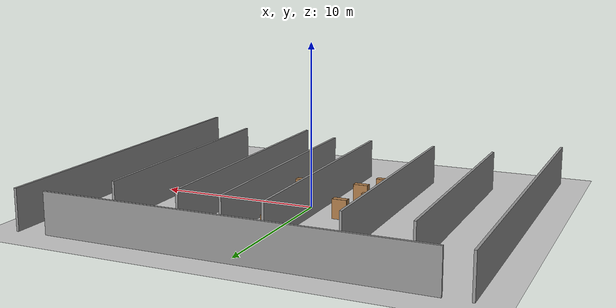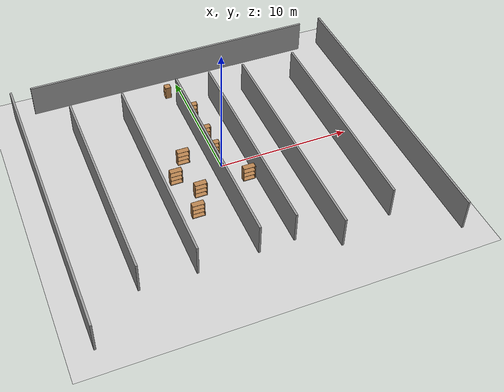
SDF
<sdf version="1.6">
 <world name="default">
  <model name="ground_plane">
   <static>1</static>
   <link name="link">
    <collision name="collision">
     <geometry><plane><normal>0 0 1</normal><size>100 100</size></plane></geometry>
     <surface><friction><ode><mu>100</mu><mu2>50</mu2></ode></friction></surface>
    </collision>
    <visual name="visual">
     <cast_shadows>0</cast_shadows>
     <geometry><plane><normal>0 0 1</normal><size>100 100</size></plane></geometry>
     <material>
      <script><uri>file://media/materials/scripts/gazebo.material</uri><name>Gazebo/Grey</name></script>
     </material>
    </visual>
   </link>
  </model>
  <model name="room14">
   <pose>0.127476 -0.35798 0 0 -0 0</pose>
   <link name="Wall_0">
    <collision name="Wall_0_Collision">
     <geometry><box><size>22.5 0.15 2.5</size></box></geometry>
     <pose>0 0 1.25 0 -0 0</pose>
    </collision>
    <visual name="Wall_0_Visual">
     <pose>0 0 1.25 0 -0 0</pose>
     <geometry><box><size>22.5 0.15 2.5</size></box></geometry>
     <material>
      <script><uri>file://media/materials/scripts/gazebo.material</uri><name>Gazebo/Grey</name></script>
      <ambient>1 1 1 1</ambient>
     </material>
     <meta><layer>0</layer></meta>
    </visual>
    <pose>-0.170741 11.1292 0 0 -0 0</pose>
   </link>
   <link name="Wall_10">
    <collision name="Wall_10_Collision">
     <geometry><box><size>16.25 0.15 2.5</size></box></geometry>
     <pose>0 0 1.25 0 -0 0</pose>
    </collision>
    <visual name="Wall_10_Visual">
     <pose>0 0 1.25 0 -0 0</pose>
     <geometry><box><size>16.25 0.15 2.5</size></box></geometry>
     <material>
      <script><uri>file://media/materials/scripts/gazebo.material</uri><name>Gazebo/Grey</name></script>
      <ambient>1 1 1 1</ambient>
     </material>
     <meta><layer>0</layer></meta>
    </visual>
    <pose>-0.774876 0.037064 0 0 -0 -1.5708</pose>
   </link>
   <link name="Wall_12">
    <collision name="Wall_12_Collision">
     <geometry><box><size>16 0.15 2.5</size></box></geometry>
     <pose>0 0 1.25 0 -0 0</pose>
    </collision>
    <visual name="Wall_12_Visual">
     <pose>0 0 1.25 0 -0 0</pose>
     <geometry><box><size>16 0.15 2.5</size></box></geometry>
     <material>
      <script><uri>file://media/materials/scripts/gazebo.material</uri><name>Gazebo/Grey</name></script>
      <ambient>1 1 1 1</ambient>
     </material>
     <meta><layer>0</layer></meta>
    </visual>
    <pose>1.86201 0.02328 0 0 -0 -1.5708</pose>
   </link>
   <link name="Wall_14">
    <collision name="Wall_14_Collision">
     <geometry><box><size>17.5 0.15 2.5</size></box></geometry>
     <pose>0 0 1.25 0 -0 0</pose>
    </collision>
    <visual name="Wall_14_Visual">
     <pose>0 0 1.25 0 -0 0</pose>
     <geometry><box><size>17.5 0.15 2.5</size></box></geometry>
     <material>
      <script><uri>file://media/materials/scripts/gazebo.material</uri><name>Gazebo/Grey</name></script>
      <ambient>1 1 1 1</ambient>
     </material>
     <meta><layer>0</layer></meta>
    </visual>
    <pose>4.63769 -0.819242 0 0 -0 -1.5708</pose>
   </link>
   <link name="Wall_16">
    <collision name="Wall_16_Collision">
     <geometry><box><size>16.25 0.15 2.5</size></box></geometry>
     <pose>0 0 1.25 0 -0 0</pose>
    </collision>
    <visual name="Wall_16_Visual">
     <pose>0 0 1.25 0 -0 0</pose>
     <geometry><box><size>16.25 0.15 2.5</size></box></geometry>
     <material>
      <script><uri>file://media/materials/scripts/gazebo.material</uri><name>Gazebo/Grey</name></script>
      <ambient>1 1 1 1</ambient>
     </material>
     <meta><layer>0</layer></meta>
    </visual>
    <pose>8.87059 -0.240503 0 0 -0 -1.5708</pose>
   </link>
   <link name="Wall_2">
    <collision name="Wall_2_Collision">
     <geometry><box><size>22.5 0.15 2.5</size></box></geometry>
     <pose>0 0 1.25 0 -0 0</pose>
    </collision>
    <visual name="Wall_2_Visual">
     <pose>0 0 1.25 0 -0 0</pose>
     <geometry><box><size>22.5 0.15 2.5</size></box></geometry>
     <material>
      <script><uri>file://media/materials/scripts/gazebo.material</uri><name>Gazebo/Grey</name></script>
      <ambient>1 1 1 1</ambient>
     </material>
     <meta><layer>0</layer></meta>
    </visual>
    <pose>-12.9184 -0.057826 0 0 -0 -1.5708</pose>
   </link>
   <link name="Wall_4">
    <collision name="Wall_4_Collision">
     <geometry><box><size>22.5 0.15 2.5</size></box></geometry>
     <pose>0 0 1.25 0 -0 0</pose>
    </collision>
    <visual name="Wall_4_Visual">
     <pose>0 0 1.25 0 -0 0</pose>
     <geometry><box><size>22.5 0.15 2.5</size></box></geometry>
     <material>
      <script><uri>file://media/materials/scripts/gazebo.material</uri><name>Gazebo/Grey</name></script>
      <ambient>1 1 1 1</ambient>
     </material>
     <meta><layer>0</layer></meta>
    </visual>
    <pose>12.9184 0.057827 0 0 -0 -1.5708</pose>
   </link>
   <link name="Wall_6">
    <collision name="Wall_6_Collision">
     <geometry><box><size>16.25 0.15 2.5</size></box></geometry>
     <pose>0 0 1.25 0 -0 0</pose>
    </collision>
    <visual name="Wall_6_Visual">
     <pose>0 0 1.25 0 -0 0</pose>
     <geometry><box><size>16.25 0.15 2.5</size></box></geometry>
     <material>
      <script><uri>file://media/materials/scripts/gazebo.material</uri><name>Gazebo/Grey</name></script>
      <ambient>1 1 1 1</ambient>
     </material>
     <meta><layer>0</layer></meta>
    </visual>
    <pose>-9.12503 0.013933 0 0 -0 -1.5708</pose>
   </link>
   <link name="Wall_8">
    <collision name="Wall_8_Collision">
     <geometry><box><size>16.25 0.15 2.5</size></box></geometry>
     <pose>0 0 1.25 0 -0 0</pose>
    </collision>
    <visual name="Wall_8_Visual">
     <pose>0 0 1.25 0 -0 0</pose>
     <geometry><box><size>16.25 0.15 2.5</size></box></geometry>
     <material>
      <script><uri>file://media/materials/scripts/gazebo.material</uri><name>Gazebo/Grey</name></script>
      <ambient>1 1 1 1</ambient>
     </material>
     <meta><layer>0</layer></meta>
    </visual>
    <pose>-5.14656 -0.078589 0 0 -0 -1.5708</pose>
   </link>
   <static>1</static>
  </model>
  <model name="bookshelf_2">
   <static>1</static>
   <link name="link">
    <inertial><mass>1</mass></inertial>
    <collision name="back">
     <pose>0 0.005 0.6 0 -0 0</pose>
     <geometry><box><size>0.9 0.01 1.2</size></box></geometry>
    </collision>
    <visual name="visual1">
     <pose>0 0.005 0.6 0 -0 0</pose>
     <geometry><box><size>0.9 0.01 1.2</size></box></geometry>
     <material>
      <script><uri>file://media/materials/scripts/gazebo.material</uri><name>Gazebo/Wood</name></script>
     </material>
    </visual>
    <collision name="left_side">
     <pose>0.45 -0.195 0.6 0 -0 0</pose>
     <geometry><box><size>0.02 0.4 1.2</size></box></geometry>
    </collision>
    <visual name="visual2">
     <pose>0.45 -0.195 0.6 0 -0 0</pose>
     <geometry><box><size>0.02 0.4 1.2</size></box></geometry>
     <material>
      <script><uri>file://media/materials/scripts/gazebo.material</uri><name>Gazebo/Wood</name></script>
     </material>
    </visual>
    <collision name="right_side">
     <pose>-0.45 -0.195 0.6 0 -0 0</pose>
     <geometry><box><size>0.02 0.4 1.2</size></box></geometry>
    </collision>
    <visual name="visual3">
     <pose>-0.45 -0.195 0.6 0 -0 0</pose>
     <geometry><box><size>0.02 0.4 1.2</size></box></geometry>
     <material>
      <script><uri>file://media/materials/scripts/gazebo.material</uri><name>Gazebo/Wood</name></script>
     </material>
    </visual>
    <collision name="bottom">
     <pose>0 -0.195 0.03 0 -0 0</pose>
     <geometry><box><size>0.88 0.4 0.06</size></box></geometry>
    </collision>
    <visual name="visual4">
     <pose>0 -0.195 0.03 0 -0 0</pose>
     <geometry><box><size>0.88 0.4 0.06</size></box></geometry>
     <material>
      <script><uri>file://media/materials/scripts/gazebo.material</uri><name>Gazebo/Wood</name></script>
     </material>
    </visual>
    <collision name="top">
     <pose>0 -0.195 1.19 0 -0 0</pose>
     <geometry><box><size>0.88 0.4 0.02</size></box></geometry>
    </collision>
    <visual name="visual5">
     <pose>0 -0.195 1.19 0 -0 0</pose>
     <geometry><box><size>0.88 0.4 0.02</size></box></geometry>
     <material>
      <script><uri>file://media/materials/scripts/gazebo.material</uri><name>Gazebo/Wood</name></script>
     </material>
    </visual>
    <collision name="low_shelf">
     <pose>0 -0.195 0.43 0 -0 0</pose>
     <geometry><box><size>0.88 0.4 0.02</size></box></geometry>
    </collision>
    <visual name="visual6">
     <pose>0 -0.195 0.43 0 -0 0</pose>
     <geometry><box><size>0.88 0.4 0.02</size></box></geometry>
     <material>
      <script><uri>file://media/materials/scripts/gazebo.material</uri><name>Gazebo/Wood</name></script>
     </material>
    </visual>
    <collision name="high_shelf">
     <pose>0 -0.195 0.8 0 -0 0</pose>
     <geometry><box><size>0.88 0.4 0.02</size></box></geometry>
    </collision>
    <visual name="visual7">
     <pose>0 -0.195 0.8 0 -0 0</pose>
     <geometry><box><size>0.88 0.4 0.02</size></box></geometry>
     <material>
      <script><uri>file://media/materials/scripts/gazebo.material</uri><name>Gazebo/Wood</name></script>
     </material>
    </visual>
   </link>
   <pose>-0.130178 6.17554 0 0 -0 0</pose>
  </model>
  <model name="bookshelf_3">
   <static>1</static>
   <link name="link">
    <inertial><mass>1</mass></inertial>
    <collision name="back">
     <pose>0 0.005 0.6 0 -0 0</pose>
     <geometry><box><size>0.9 0.01 1.2</size></box></geometry>
    </collision>
    <visual name="visual1">
     <pose>0 0.005 0.6 0 -0 0</pose>
     <geometry><box><size>0.9 0.01 1.2</size></box></geometry>
     <material>
      <script><uri>file://media/materials/scripts/gazebo.material</uri><name>Gazebo/Wood</name></script>
     </material>
    </visual>
    <collision name="left_side">
     <pose>0.45 -0.195 0.6 0 -0 0</pose>
     <geometry><box><size>0.02 0.4 1.2</size></box></geometry>
    </collision>
    <visual name="visual2">
     <pose>0.45 -0.195 0.6 0 -0 0</pose>
     <geometry><box><size>0.02 0.4 1.2</size></box></geometry>
     <material>
      <script><uri>file://media/materials/scripts/gazebo.material</uri><name>Gazebo/Wood</name></script>
     </material>
    </visual>
    <collision name="right_side">
     <pose>-0.45 -0.195 0.6 0 -0 0</pose>
     <geometry><box><size>0.02 0.4 1.2</size></box></geometry>
    </collision>
    <visual name="visual3">
     <pose>-0.45 -0.195 0.6 0 -0 0</pose>
     <geometry><box><size>0.02 0.4 1.2</size></box></geometry>
     <material>
      <script><uri>file://media/materials/scripts/gazebo.material</uri><name>Gazebo/Wood</name></script>
     </material>
    </visual>
    <collision name="bottom">
     <pose>0 -0.195 0.03 0 -0 0</pose>
     <geometry><box><size>0.88 0.4 0.06</size></box></geometry>
    </collision>
    <visual name="visual4">
     <pose>0 -0.195 0.03 0 -0 0</pose>
     <geometry><box><size>0.88 0.4 0.06</size></box></geometry>
     <material>
      <script><uri>file://media/materials/scripts/gazebo.material</uri><name>Gazebo/Wood</name></script>
     </material>
    </visual>
    <collision name="top">
     <pose>0 -0.195 1.19 0 -0 0</pose>
     <geometry><box><size>0.88 0.4 0.02</size></box></geometry>
    </collision>
    <visual name="visual5">
     <pose>0 -0.195 1.19 0 -0 0</pose>
     <geometry><box><size>0.88 0.4 0.02</size></box></geometry>
     <material>
      <script><uri>file://media/materials/scripts/gazebo.material</uri><name>Gazebo/Wood</name></script>
     </material>
    </visual>
    <collision name="low_shelf">
     <pose>0 -0.195 0.43 0 -0 0</pose>
     <geometry><box><size>0.88 0.4 0.02</size></box></geometry>
    </collision>
    <visual name="visual6">
     <pose>0 -0.195 0.43 0 -0 0</pose>
     <geometry><box><size>0.88 0.4 0.02</size></box></geometry>
     <material>
      <script><uri>file://media/materials/scripts/gazebo.material</uri><name>Gazebo/Wood</name></script>
     </material>
    </visual>
    <collision name="high_shelf">
     <pose>0 -0.195 0.8 0 -0 0</pose>
     <geometry><box><size>0.88 0.4 0.02</size></box></geometry>
    </collision>
    <visual name="visual7">
     <pose>0 -0.195 0.8 0 -0 0</pose>
     <geometry><box><size>0.88 0.4 0.02</size></box></geometry>
     <material>
      <script><uri>file://media/materials/scripts/gazebo.material</uri><name>Gazebo/Wood</name></script>
     </material>
    </visual>
   </link>
   <pose>-0.095564 3.42207 0 0 -0 0</pose>
  </model>
  <model name="bookshelf_4">
   <static>1</static>
   <link name="link">
    <inertial><mass>1</mass></inertial>
    <collision name="back">
     <pose>0 0.005 0.6 0 -0 0</pose>
     <geometry><box><size>0.9 0.01 1.2</size></box></geometry>
    </collision>
    <visual name="visual1">
     <pose>0 0.005 0.6 0 -0 0</pose>
     <geometry><box><size>0.9 0.01 1.2</size></box></geometry>
     <material>
      <script><uri>file://media/materials/scripts/gazebo.material</uri><name>Gazebo/Wood</name></script>
     </material>
    </visual>
    <collision name="left_side">
     <pose>0.45 -0.195 0.6 0 -0 0</pose>
     <geometry><box><size>0.02 0.4 1.2</size></box></geometry>
    </collision>
    <visual name="visual2">
     <pose>0.45 -0.195 0.6 0 -0 0</pose>
     <geometry><box><size>0.02 0.4 1.2</size></box></geometry>
     <material>
      <script><uri>file://media/materials/scripts/gazebo.material</uri><name>Gazebo/Wood</name></script>
     </material>
    </visual>
    <collision name="right_side">
     <pose>-0.45 -0.195 0.6 0 -0 0</pose>
     <geometry><box><size>0.02 0.4 1.2</size></box></geometry>
    </collision>
    <visual name="visual3">
     <pose>-0.45 -0.195 0.6 0 -0 0</pose>
     <geometry><box><size>0.02 0.4 1.2</size></box></geometry>
     <material>
      <script><uri>file://media/materials/scripts/gazebo.material</uri><name>Gazebo/Wood</name></script>
     </material>
    </visual>
    <collision name="bottom">
     <pose>0 -0.195 0.03 0 -0 0</pose>
     <geometry><box><size>0.88 0.4 0.06</size></box></geometry>
    </collision>
    <visual name="visual4">
     <pose>0 -0.195 0.03 0 -0 0</pose>
     <geometry><box><size>0.88 0.4 0.06</size></box></geometry>
     <material>
      <script><uri>file://media/materials/scripts/gazebo.material</uri><name>Gazebo/Wood</name></script>
     </material>
    </visual>
    <collision name="top">
     <pose>0 -0.195 1.19 0 -0 0</pose>
     <geometry><box><size>0.88 0.4 0.02</size></box></geometry>
    </collision>
    <visual name="visual5">
     <pose>0 -0.195 1.19 0 -0 0</pose>
     <geometry><box><size>0.88 0.4 0.02</size></box></geometry>
     <material>
      <script><uri>file://media/materials/scripts/gazebo.material</uri><name>Gazebo/Wood</name></script>
     </material>
    </visual>
    <collision name="low_shelf">
     <pose>0 -0.195 0.43 0 -0 0</pose>
     <geometry><box><size>0.88 0.4 0.02</size></box></geometry>
    </collision>
    <visual name="visual6">
     <pose>0 -0.195 0.43 0 -0 0</pose>
     <geometry><box><size>0.88 0.4 0.02</size></box></geometry>
     <material>
      <script><uri>file://media/materials/scripts/gazebo.material</uri><name>Gazebo/Wood</name></script>
     </material>
    </visual>
    <collision name="high_shelf">
     <pose>0 -0.195 0.8 0 -0 0</pose>
     <geometry><box><size>0.88 0.4 0.02</size></box></geometry>
    </collision>
    <visual name="visual7">
     <pose>0 -0.195 0.8 0 -0 0</pose>
     <geometry><box><size>0.88 0.4 0.02</size></box></geometry>
     <material>
      <script><uri>file://media/materials/scripts/gazebo.material</uri><name>Gazebo/Wood</name></script>
     </material>
    </visual>
   </link>
   <pose>-0.10659 1.61243 0 0 -0 0</pose>
  </model>
  <model name="bookshelf_5">
   <static>1</static>
   <link name="link">
    <inertial><mass>1</mass></inertial>
    <collision name="back">
     <pose>0 0.005 0.6 0 -0 0</pose>
     <geometry><box><size>0.9 0.01 1.2</size></box></geometry>
    </collision>
    <visual name="visual1">
     <pose>0 0.005 0.6 0 -0 0</pose>
     <geometry><box><size>0.9 0.01 1.2</size></box></geometry>
     <material>
      <script><uri>file://media/materials/scripts/gazebo.material</uri><name>Gazebo/Wood</name></script>
     </material>
    </visual>
    <collision name="left_side">
     <pose>0.45 -0.195 0.6 0 -0 0</pose>
     <geometry><box><size>0.02 0.4 1.2</size></box></geometry>
    </collision>
    <visual name="visual2">
     <pose>0.45 -0.195 0.6 0 -0 0</pose>
     <geometry><box><size>0.02 0.4 1.2</size></box></geometry>
     <material>
      <script><uri>file://media/materials/scripts/gazebo.material</uri><name>Gazebo/Wood</name></script>
     </material>
    </visual>
    <collision name="right_side">
     <pose>-0.45 -0.195 0.6 0 -0 0</pose>
     <geometry><box><size>0.02 0.4 1.2</size></box></geometry>
    </collision>
    <visual name="visual3">
     <pose>-0.45 -0.195 0.6 0 -0 0</pose>
     <geometry><box><size>0.02 0.4 1.2</size></box></geometry>
     <material>
      <script><uri>file://media/materials/scripts/gazebo.material</uri><name>Gazebo/Wood</name></script>
     </material>
    </visual>
    <collision name="bottom">
     <pose>0 -0.195 0.03 0 -0 0</pose>
     <geometry><box><size>0.88 0.4 0.06</size></box></geometry>
    </collision>
    <visual name="visual4">
     <pose>0 -0.195 0.03 0 -0 0</pose>
     <geometry><box><size>0.88 0.4 0.06</size></box></geometry>
     <material>
      <script><uri>file://media/materials/scripts/gazebo.material</uri><name>Gazebo/Wood</name></script>
     </material>
    </visual>
    <collision name="top">
     <pose>0 -0.195 1.19 0 -0 0</pose>
     <geometry><box><size>0.88 0.4 0.02</size></box></geometry>
    </collision>
    <visual name="visual5">
     <pose>0 -0.195 1.19 0 -0 0</pose>
     <geometry><box><size>0.88 0.4 0.02</size></box></geometry>
     <material>
      <script><uri>file://media/materials/scripts/gazebo.material</uri><name>Gazebo/Wood</name></script>
     </material>
    </visual>
    <collision name="low_shelf">
     <pose>0 -0.195 0.43 0 -0 0</pose>
     <geometry><box><size>0.88 0.4 0.02</size></box></geometry>
    </collision>
    <visual name="visual6">
     <pose>0 -0.195 0.43 0 -0 0</pose>
     <geometry><box><size>0.88 0.4 0.02</size></box></geometry>
     <material>
      <script><uri>file://media/materials/scripts/gazebo.material</uri><name>Gazebo/Wood</name></script>
     </material>
    </visual>
    <collision name="high_shelf">
     <pose>0 -0.195 0.8 0 -0 0</pose>
     <geometry><box><size>0.88 0.4 0.02</size></box></geometry>
    </collision>
    <visual name="visual7">
     <pose>0 -0.195 0.8 0 -0 0</pose>
     <geometry><box><size>0.88 0.4 0.02</size></box></geometry>
     <material>
      <script><uri>file://media/materials/scripts/gazebo.material</uri><name>Gazebo/Wood</name></script>
     </material>
    </visual>
   </link>
   <pose>1.36039 -1.63052 0 0 -0 0</pose>
  </model>
  <model name="cabinet_5">
   <static>1</static>
   <link name="cabinet_bottom_plate">
    <inertial>
     <pose>0 0 -1 0 -0 0</pose>
     <inertia><ixx>2.05</ixx><ixy>0</ixy><ixz>0</ixz><iyy>2.05</iyy><iyz>0</iyz><izz>2.05</izz></inertia>
     <mass>25</mass>
    </inertial>
    <collision name="cabinet_bottom_plate_geom">
     <pose>0 0 0.01 0 -0 0</pose>
     <geometry><box><size>0.45 0.45 0.02</size></box></geometry>
    </collision>
    <visual name="cabinet_bottom_plate_geom_visual">
     <pose>0 0 0.01 0 -0 0</pose>
     <geometry><box><size>0.45 0.45 0.02</size></box></geometry>
     <material>
      <script><uri>file://media/materials/scripts/gazebo.material</uri><name>Gazebo/Wood</name></script>
     </material>
    </visual>
    <collision name="cabinet_bottom_plate_geom_cabinet_back_plate">
     <pose>0.235 0 0.51 0 -0 0</pose>
     <geometry><box><size>0.02 0.45 1.02</size></box></geometry>
    </collision>
    <visual name="cabinet_bottom_plate_geom_cabinet_back_plate_visual">
     <pose>0.235 0 0.51 0 -0 0</pose>
     <geometry><box><size>0.02 0.45 1.02</size></box></geometry>
     <material>
      <script><uri>file://media/materials/scripts/gazebo.material</uri><name>Gazebo/Wood</name></script>
     </material>
    </visual>
    <collision name="cabinet_bottom_plate_geom_cabinet_left_plate">
     <pose>0 0.235 0.51 0 -0 0</pose>
     <geometry><box><size>0.45 0.02 1.02</size></box></geometry>
    </collision>
    <visual name="cabinet_bottom_plate_geom_cabinet_left_plate_visual">
     <pose>0 0.235 0.51 0 -0 0</pose>
     <geometry><box><size>0.45 0.02 1.02</size></box></geometry>
     <material>
      <script><uri>file://media/materials/scripts/gazebo.material</uri><name>Gazebo/Wood</name></script>
     </material>
    </visual>
    <collision name="cabinet_bottom_plate_geom_cabinet_middle_plate">
     <pose>0 0 0.51 0 -0 0</pose>
     <geometry><box><size>0.45 0.45 0.02</size></box></geometry>
    </collision>
    <visual name="cabinet_bottom_plate_geom_cabinet_middle_plate_visual">
     <pose>0 0 0.51 0 -0 0</pose>
     <geometry><box><size>0.45 0.45 0.02</size></box></geometry>
     <material>
      <script><uri>file://media/materials/scripts/gazebo.material</uri><name>Gazebo/Wood</name></script>
     </material>
    </visual>
    <collision name="cabinet_bottom_plate_geom_cabinet_right_plate">
     <pose>0 -0.235 0.51 0 -0 0</pose>
     <geometry><box><size>0.45 0.02 1.02</size></box></geometry>
    </collision>
    <visual name="cabinet_bottom_plate_geom_cabinet_right_plate_visual">
     <pose>0 -0.235 0.51 0 -0 0</pose>
     <geometry><box><size>0.45 0.02 1.02</size></box></geometry>
     <material>
      <script><uri>file://media/materials/scripts/gazebo.material</uri><name>Gazebo/Wood</name></script>
     </material>
    </visual>
    <collision name="cabinet_bottom_plate_geom_cabinet_top_plate">
     <pose>0 0 1.01 0 -0 0</pose>
     <geometry><box><size>0.45 0.45 0.02</size></box></geometry>
    </collision>
    <visual name="cabinet_bottom_plate_geom_cabinet_top_plate_visual">
     <pose>0 0 1.01 0 -0 0</pose>
     <geometry><box><size>0.45 0.45 0.02</size></box></geometry>
     <material>
      <script><uri>file://media/materials/scripts/gazebo.material</uri><name>Gazebo/Wood</name></script>
     </material>
    </visual>
   </link>
   <pose>-1.0665 8.90961 0 0 -0 0</pose>
  </model>
  <model name="bookshelf_15">
   <static>1</static>
   <link name="link">
    <inertial><mass>1</mass></inertial>
    <collision name="back">
     <pose>0 0.005 0.6 0 -0 0</pose>
     <geometry><box><size>0.9 0.01 1.2</size></box></geometry>
    </collision>
    <visual name="visual1">
     <pose>0 0.005 0.6 0 -0 0</pose>
     <geometry><box><size>0.9 0.01 1.2</size></box></geometry>
     <material>
      <script><uri>file://media/materials/scripts/gazebo.material</uri><name>Gazebo/Wood</name></script>
     </material>
    </visual>
    <collision name="left_side">
     <pose>0.45 -0.195 0.6 0 -0 0</pose>
     <geometry><box><size>0.02 0.4 1.2</size></box></geometry>
    </collision>
    <visual name="visual2">
     <pose>0.45 -0.195 0.6 0 -0 0</pose>
     <geometry><box><size>0.02 0.4 1.2</size></box></geometry>
     <material>
      <script><uri>file://media/materials/scripts/gazebo.material</uri><name>Gazebo/Wood</name></script>
     </material>
    </visual>
    <collision name="right_side">
     <pose>-0.45 -0.195 0.6 0 -0 0</pose>
     <geometry><box><size>0.02 0.4 1.2</size></box></geometry>
    </collision>
    <visual name="visual3">
     <pose>-0.45 -0.195 0.6 0 -0 0</pose>
     <geometry><box><size>0.02 0.4 1.2</size></box></geometry>
     <material>
      <script><uri>file://media/materials/scripts/gazebo.material</uri><name>Gazebo/Wood</name></script>
     </material>
    </visual>
    <collision name="bottom">
     <pose>0 -0.195 0.03 0 -0 0</pose>
     <geometry><box><size>0.88 0.4 0.06</size></box></geometry>
    </collision>
    <visual name="visual4">
     <pose>0 -0.195 0.03 0 -0 0</pose>
     <geometry><box><size>0.88 0.4 0.06</size></box></geometry>
     <material>
      <script><uri>file://media/materials/scripts/gazebo.material</uri><name>Gazebo/Wood</name></script>
     </material>
    </visual>
    <collision name="top">
     <pose>0 -0.195 1.19 0 -0 0</pose>
     <geometry><box><size>0.88 0.4 0.02</size></box></geometry>
    </collision>
    <visual name="visual5">
     <pose>0 -0.195 1.19 0 -0 0</pose>
     <geometry><box><size>0.88 0.4 0.02</size></box></geometry>
     <material>
      <script><uri>file://media/materials/scripts/gazebo.material</uri><name>Gazebo/Wood</name></script>
     </material>
    </visual>
    <collision name="low_shelf">
     <pose>0 -0.195 0.43 0 -0 0</pose>
     <geometry><box><size>0.88 0.4 0.02</size></box></geometry>
    </collision>
    <visual name="visual6">
     <pose>0 -0.195 0.43 0 -0 0</pose>
     <geometry><box><size>0.88 0.4 0.02</size></box></geometry>
     <material>
      <script><uri>file://media/materials/scripts/gazebo.material</uri><name>Gazebo/Wood</name></script>
     </material>
    </visual>
    <collision name="high_shelf">
     <pose>0 -0.195 0.8 0 -0 0</pose>
     <geometry><box><size>0.88 0.4 0.02</size></box></geometry>
    </collision>
    <visual name="visual7">
     <pose>0 -0.195 0.8 0 -0 0</pose>
     <geometry><box><size>0.88 0.4 0.02</size></box></geometry>
     <material>
      <script><uri>file://media/materials/scripts/gazebo.material</uri><name>Gazebo/Wood</name></script>
     </material>
    </visual>
   </link>
   <pose>-2.46389 1.62338 0 0 -0 0</pose>
  </model>
  <model name="bookshelf_16">
   <static>1</static>
   <link name="link">
    <inertial><mass>1</mass></inertial>
    <collision name="back">
     <pose>0 0.005 0.6 0 -0 0</pose>
     <geometry><box><size>0.9 0.01 1.2</size></box></geometry>
    </collision>
    <visual name="visual1">
     <pose>0 0.005 0.6 0 -0 0</pose>
     <geometry><box><size>0.9 0.01 1.2</size></box></geometry>
     <material>
      <script><uri>file://media/materials/scripts/gazebo.material</uri><name>Gazebo/Wood</name></script>
     </material>
    </visual>
    <collision name="left_side">
     <pose>0.45 -0.195 0.6 0 -0 0</pose>
     <geometry><box><size>0.02 0.4 1.2</size></box></geometry>
    </collision>
    <visual name="visual2">
     <pose>0.45 -0.195 0.6 0 -0 0</pose>
     <geometry><box><size>0.02 0.4 1.2</size></box></geometry>
     <material>
      <script><uri>file://media/materials/scripts/gazebo.material</uri><name>Gazebo/Wood</name></script>
     </material>
    </visual>
    <collision name="right_side">
     <pose>-0.45 -0.195 0.6 0 -0 0</pose>
     <geometry><box><size>0.02 0.4 1.2</size></box></geometry>
    </collision>
    <visual name="visual3">
     <pose>-0.45 -0.195 0.6 0 -0 0</pose>
     <geometry><box><size>0.02 0.4 1.2</size></box></geometry>
     <material>
      <script><uri>file://media/materials/scripts/gazebo.material</uri><name>Gazebo/Wood</name></script>
     </material>
    </visual>
    <collision name="bottom">
     <pose>0 -0.195 0.03 0 -0 0</pose>
     <geometry><box><size>0.88 0.4 0.06</size></box></geometry>
    </collision>
    <visual name="visual4">
     <pose>0 -0.195 0.03 0 -0 0</pose>
     <geometry><box><size>0.88 0.4 0.06</size></box></geometry>
     <material>
      <script><uri>file://media/materials/scripts/gazebo.material</uri><name>Gazebo/Wood</name></script>
     </material>
    </visual>
    <collision name="top">
     <pose>0 -0.195 1.19 0 -0 0</pose>
     <geometry><box><size>0.88 0.4 0.02</size></box></geometry>
    </collision>
    <visual name="visual5">
     <pose>0 -0.195 1.19 0 -0 0</pose>
     <geometry><box><size>0.88 0.4 0.02</size></box></geometry>
     <material>
      <script><uri>file://media/materials/scripts/gazebo.material</uri><name>Gazebo/Wood</name></script>
     </material>
    </visual>
    <collision name="low_shelf">
     <pose>0 -0.195 0.43 0 -0 0</pose>
     <geometry><box><size>0.88 0.4 0.02</size></box></geometry>
    </collision>
    <visual name="visual6">
     <pose>0 -0.195 0.43 0 -0 0</pose>
     <geometry><box><size>0.88 0.4 0.02</size></box></geometry>
     <material>
      <script><uri>file://media/materials/scripts/gazebo.material</uri><name>Gazebo/Wood</name></script>
     </material>
    </visual>
    <collision name="high_shelf">
     <pose>0 -0.195 0.8 0 -0 0</pose>
     <geometry><box><size>0.88 0.4 0.02</size></box></geometry>
    </collision>
    <visual name="visual7">
     <pose>0 -0.195 0.8 0 -0 0</pose>
     <geometry><box><size>0.88 0.4 0.02</size></box></geometry>
     <material>
      <script><uri>file://media/materials/scripts/gazebo.material</uri><name>Gazebo/Wood</name></script>
     </material>
    </visual>
   </link>
   <pose>-3.61267 -0.096571 0 0 -0 0</pose>
  </model>
  <model name="bookshelf_17">
   <static>1</static>
   <link name="link">
    <inertial><mass>1</mass></inertial>
    <collision name="back">
     <pose>0 0.005 0.6 0 -0 0</pose>
     <geometry><box><size>0.9 0.01 1.2</size></box></geometry>
    </collision>
    <visual name="visual1">
     <pose>0 0.005 0.6 0 -0 0</pose>
     <geometry><box><size>0.9 0.01 1.2</size></box></geometry>
     <material>
      <script><uri>file://media/materials/scripts/gazebo.material</uri><name>Gazebo/Wood</name></script>
     </material>
    </visual>
    <collision name="left_side">
     <pose>0.45 -0.195 0.6 0 -0 0</pose>
     <geometry><box><size>0.02 0.4 1.2</size></box></geometry>
    </collision>
    <visual name="visual2">
     <pose>0.45 -0.195 0.6 0 -0 0</pose>
     <geometry><box><size>0.02 0.4 1.2</size></box></geometry>
     <material>
      <script><uri>file://media/materials/scripts/gazebo.material</uri><name>Gazebo/Wood</name></script>
     </material>
    </visual>
    <collision name="right_side">
     <pose>-0.45 -0.195 0.6 0 -0 0</pose>
     <geometry><box><size>0.02 0.4 1.2</size></box></geometry>
    </collision>
    <visual name="visual3">
     <pose>-0.45 -0.195 0.6 0 -0 0</pose>
     <geometry><box><size>0.02 0.4 1.2</size></box></geometry>
     <material>
      <script><uri>file://media/materials/scripts/gazebo.material</uri><name>Gazebo/Wood</name></script>
     </material>
    </visual>
    <collision name="bottom">
     <pose>0 -0.195 0.03 0 -0 0</pose>
     <geometry><box><size>0.88 0.4 0.06</size></box></geometry>
    </collision>
    <visual name="visual4">
     <pose>0 -0.195 0.03 0 -0 0</pose>
     <geometry><box><size>0.88 0.4 0.06</size></box></geometry>
     <material>
      <script><uri>file://media/materials/scripts/gazebo.material</uri><name>Gazebo/Wood</name></script>
     </material>
    </visual>
    <collision name="top">
     <pose>0 -0.195 1.19 0 -0 0</pose>
     <geometry><box><size>0.88 0.4 0.02</size></box></geometry>
    </collision>
    <visual name="visual5">
     <pose>0 -0.195 1.19 0 -0 0</pose>
     <geometry><box><size>0.88 0.4 0.02</size></box></geometry>
     <material>
      <script><uri>file://media/materials/scripts/gazebo.material</uri><name>Gazebo/Wood</name></script>
     </material>
    </visual>
    <collision name="low_shelf">
     <pose>0 -0.195 0.43 0 -0 0</pose>
     <geometry><box><size>0.88 0.4 0.02</size></box></geometry>
    </collision>
    <visual name="visual6">
     <pose>0 -0.195 0.43 0 -0 0</pose>
     <geometry><box><size>0.88 0.4 0.02</size></box></geometry>
     <material>
      <script><uri>file://media/materials/scripts/gazebo.material</uri><name>Gazebo/Wood</name></script>
     </material>
    </visual>
    <collision name="high_shelf">
     <pose>0 -0.195 0.8 0 -0 0</pose>
     <geometry><box><size>0.88 0.4 0.02</size></box></geometry>
    </collision>
    <visual name="visual7">
     <pose>0 -0.195 0.8 0 -0 0</pose>
     <geometry><box><size>0.88 0.4 0.02</size></box></geometry>
     <material>
      <script><uri>file://media/materials/scripts/gazebo.material</uri><name>Gazebo/Wood</name></script>
     </material>
    </visual>
   </link>
   <pose>-2.41907 -1.89061 0 0 -0 0</pose>
  </model>
  <model name="bookshelf_18">
   <static>1</static>
   <link name="link">
    <inertial><mass>1</mass></inertial>
    <collision name="back">
     <pose>0 0.005 0.6 0 -0 0</pose>
     <geometry><box><size>0.9 0.01 1.2</size></box></geometry>
    </collision>
    <visual name="visual1">
     <pose>0 0.005 0.6 0 -0 0</pose>
     <geometry><box><size>0.9 0.01 1.2</size></box></geometry>
     <material>
      <script><uri>file://media/materials/scripts/gazebo.material</uri><name>Gazebo/Wood</name></script>
     </material>
    </visual>
    <collision name="left_side">
     <pose>0.45 -0.195 0.6 0 -0 0</pose>
     <geometry><box><size>0.02 0.4 1.2</size></box></geometry>
    </collision>
    <visual name="visual2">
     <pose>0.45 -0.195 0.6 0 -0 0</pose>
     <geometry><box><size>0.02 0.4 1.2</size></box></geometry>
     <material>
      <script><uri>file://media/materials/scripts/gazebo.material</uri><name>Gazebo/Wood</name></script>
     </material>
    </visual>
    <collision name="right_side">
     <pose>-0.45 -0.195 0.6 0 -0 0</pose>
     <geometry><box><size>0.02 0.4 1.2</size></box></geometry>
    </collision>
    <visual name="visual3">
     <pose>-0.45 -0.195 0.6 0 -0 0</pose>
     <geometry><box><size>0.02 0.4 1.2</size></box></geometry>
     <material>
      <script><uri>file://media/materials/scripts/gazebo.material</uri><name>Gazebo/Wood</name></script>
     </material>
    </visual>
    <collision name="bottom">
     <pose>0 -0.195 0.03 0 -0 0</pose>
     <geometry><box><size>0.88 0.4 0.06</size></box></geometry>
    </collision>
    <visual name="visual4">
     <pose>0 -0.195 0.03 0 -0 0</pose>
     <geometry><box><size>0.88 0.4 0.06</size></box></geometry>
     <material>
      <script><uri>file://media/materials/scripts/gazebo.material</uri><name>Gazebo/Wood</name></script>
     </material>
    </visual>
    <collision name="top">
     <pose>0 -0.195 1.19 0 -0 0</pose>
     <geometry><box><size>0.88 0.4 0.02</size></box></geometry>
    </collision>
    <visual name="visual5">
     <pose>0 -0.195 1.19 0 -0 0</pose>
     <geometry><box><size>0.88 0.4 0.02</size></box></geometry>
     <material>
      <script><uri>file://media/materials/scripts/gazebo.material</uri><name>Gazebo/Wood</name></script>
     </material>
    </visual>
    <collision name="low_shelf">
     <pose>0 -0.195 0.43 0 -0 0</pose>
     <geometry><box><size>0.88 0.4 0.02</size></box></geometry>
    </collision>
    <visual name="visual6">
     <pose>0 -0.195 0.43 0 -0 0</pose>
     <geometry><box><size>0.88 0.4 0.02</size></box></geometry>
     <material>
      <script><uri>file://media/materials/scripts/gazebo.material</uri><name>Gazebo/Wood</name></script>
     </material>
    </visual>
    <collision name="high_shelf">
     <pose>0 -0.195 0.8 0 -0 0</pose>
     <geometry><box><size>0.88 0.4 0.02</size></box></geometry>
    </collision>
    <visual name="visual7">
     <pose>0 -0.195 0.8 0 -0 0</pose>
     <geometry><box><size>0.88 0.4 0.02</size></box></geometry>
     <material>
      <script><uri>file://media/materials/scripts/gazebo.material</uri><name>Gazebo/Wood</name></script>
     </material>
    </visual>
   </link>
   <pose>-3.25435 -3.64158 0 0 -0 0</pose>
  </model>
 </world>
</sdf>
